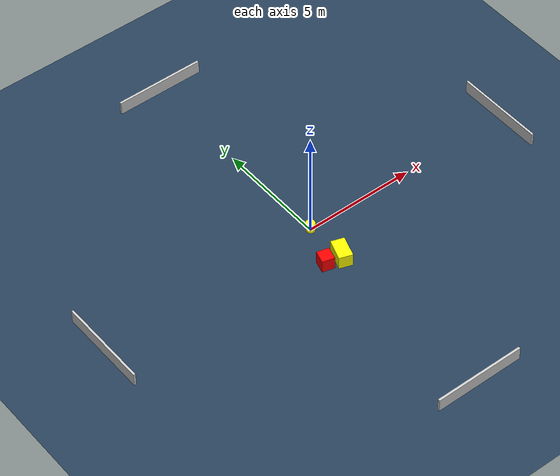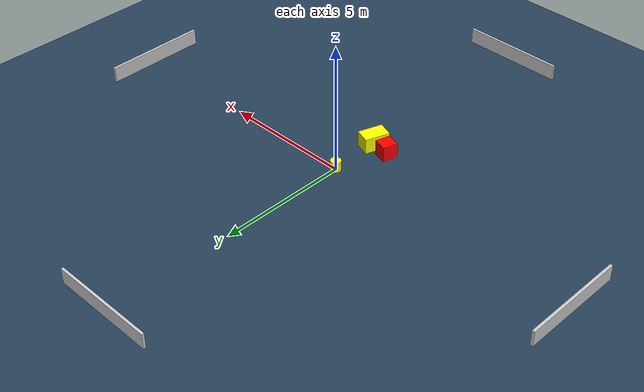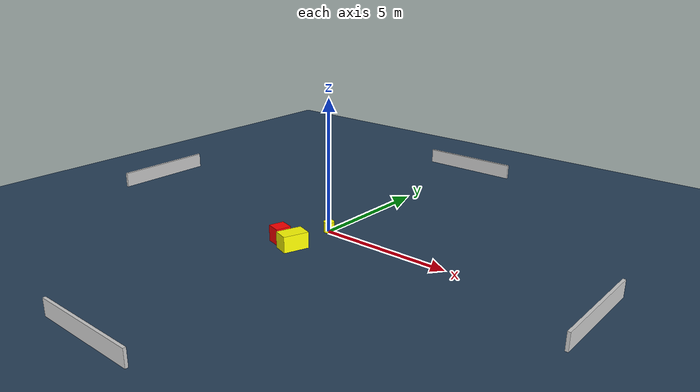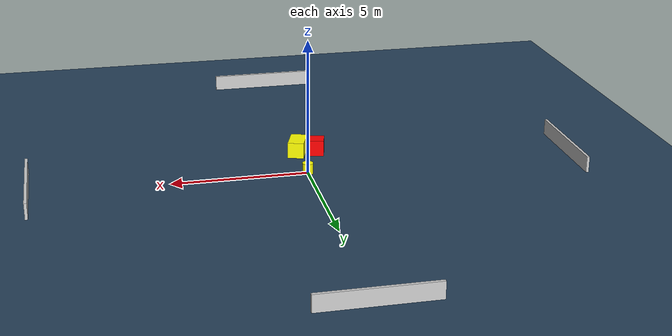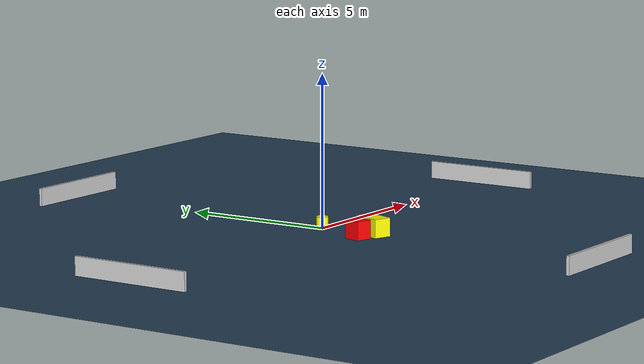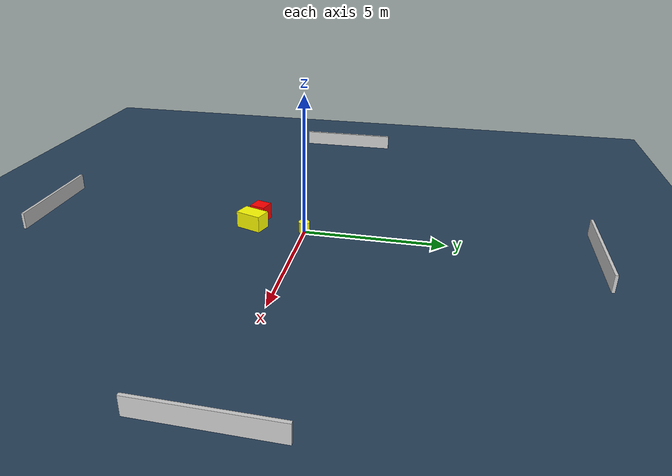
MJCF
<?xml version="1.0" ?>
<mujoco model="generated_environment">
  <option timestep="0.01" integrator="RK4" cone="elliptic"/>
  <default>
    <geom density="1"/>
  </default>
  <asset>
    <texture builtin="gradient" height="3072" name="skybox" rgb1="0.3 0.5 0.7" rgb2="0 0 0" type="skybox" width="512"/>
    <texture builtin="checker" height="300" name="groundplane" rgb1="0.2 0.3 0.4" rgb2="0.1 0.2 0.3" type="2d" width="300"/>
    <material name="groundplane" reflectance="0.2" texrepeat="5 5" texture="groundplane"/>
  </asset>
  <worldbody>
    <light dir="0 0 -1" directional="true" pos="0 0 1.5"/>
    <geom condim="3" friction="0.5 0.005 0.001" material="groundplane" name="floor" pos="0 0 0" size="0 0 0.05" type="plane"/>
    <body name="walls">
      <geom name="wall_1" condim="4" pos="-10.0 0.0 0.3" rgba="0.800000011920929 0.800000011920929 0.800000011920929 1.0" size="0.05 2.0 0.3" type="box"/>
      <geom name="wall_2" condim="4" pos="10.0 0.0 0.3" rgba="0.800000011920929 0.800000011920929 0.800000011920929 1.0" size="0.05 2.0 0.3" type="box"/>
      <geom name="wall_3" condim="4" pos="0.0 -10.0 0.3" rgba="0.800000011920929 0.800000011920929 0.800000011920929 1.0" size="2.0 0.05 0.3" type="box"/>
      <geom name="wall_4" condim="4" pos="0.0 10.0 0.3" rgba="0.800000011920929 0.800000011920929 0.800000011920929 1.0" size="2.0 0.05 0.3" type="box"/>
    </body>
    <body name="robot">
      <joint name="joint_x" type="slide" pos="0 0 0" axis="1 0 0"/>
      <joint name="joint_y" type="slide" pos="0 0 0" axis="0 1 0"/>
      <geom name="robot" type="cylinder" pos="0.0 0.0 0.2" size="0.2 0.2 0.0" mass="5.0" friction="1.0 0.005 0.0001" condim="4" rgba="1.0 1.0 0.0 1.0"/>
    </body>
    <body name="obstacle_1_movable">
      <geom name="obstacle_1_movable" condim="4" pos="-0.0024616826300747135 -1.9371878209176985 0.3" euler="0 0 161.04790010415783" friction="0.0 0.005 0.001" rgba="1.0 1.0 0.0 1.0" size="0.29999294498672674 0.4807918325453347 0.3" type="box" mass="0.1"/>
      <joint type="free"/>
    </body>
    <body name="obstacle_2_static">
      <geom name="obstacle_2_static" condim="4" pos="-0.720642198563533 -1.8276860082577002 0.3" euler="0 0 254.66280773017155" friction="0.0 0.005 0.001" rgba="1.0 0.0 0.0 1.0" size="0.2874279863834238 0.2728206761553734 0.3" type="box"/>
    </body>
  </worldbody>
  <actuator>
    <motor name="actuator_x" joint="joint_x" gear="1" ctrlrange="-1 1"/>
    <motor name="actuator_y" joint="joint_y" gear="1" ctrlrange="-1 1"/>
  </actuator>
</mujoco>
